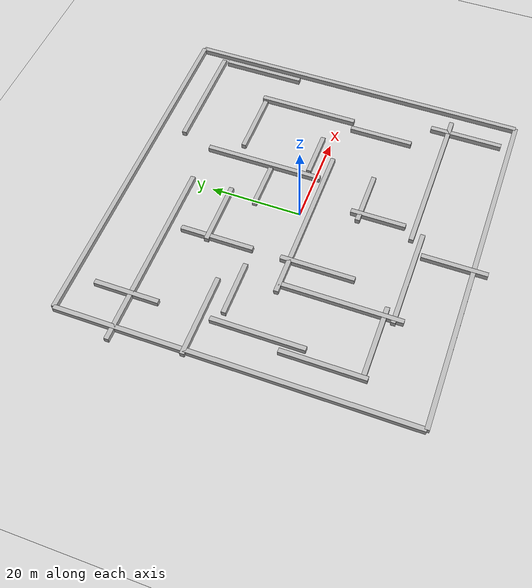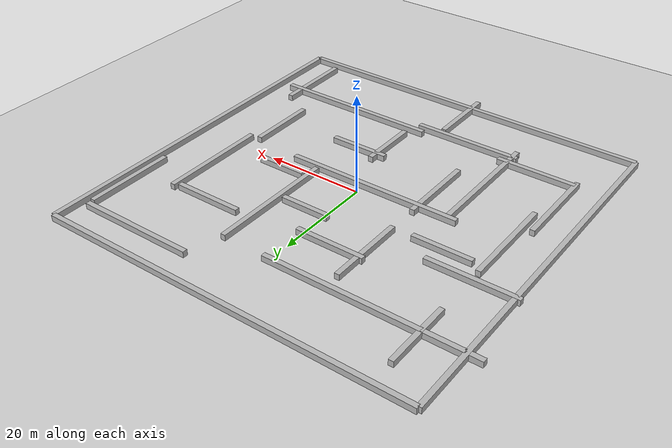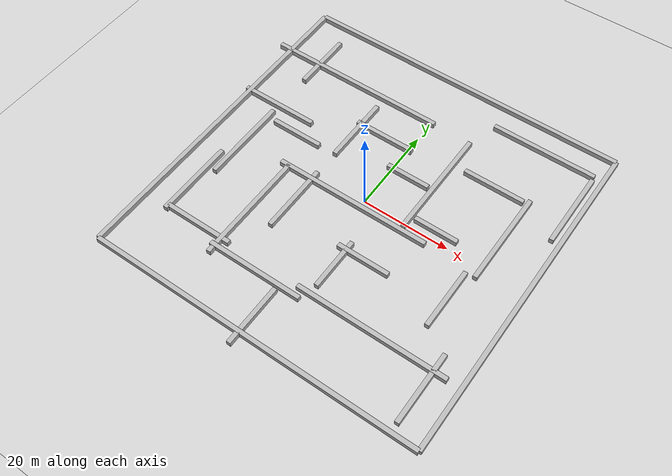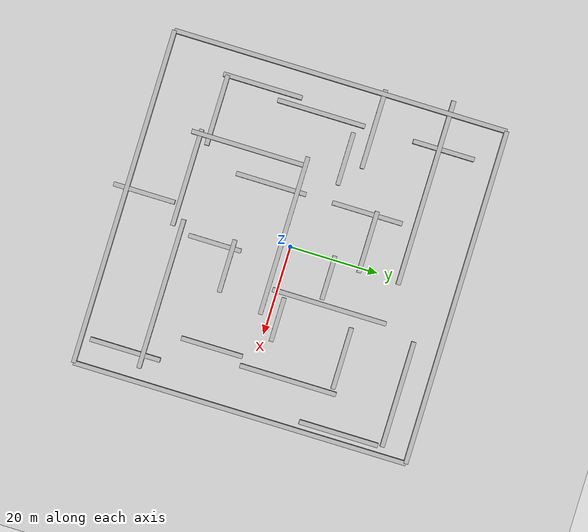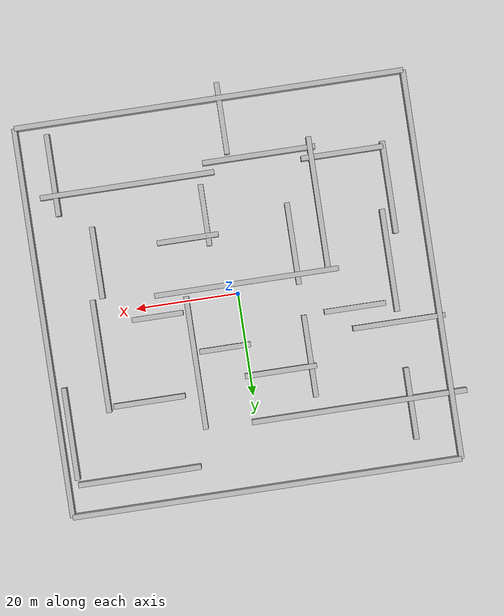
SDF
<?xml version="1.0" encoding="UTF-8"?>
<sdf version="1.9">
  <world name="walls">
    <physics type="ode">
      <max_step_size>0.004</max_step_size>
      <real_time_factor>1.0</real_time_factor>
      <real_time_update_rate>250</real_time_update_rate>
    </physics>

    <plugin
      filename="gz-sim-physics-system"
      name="gz::sim::systems::Physics">
    </plugin>
    <plugin
      filename="gz-sim-user-commands-system"
      name="gz::sim::systems::UserCommands">
    </plugin>
    <plugin
      filename="gz-sim-scene-broadcaster-system"
      name="gz::sim::systems::SceneBroadcaster">
    </plugin>
    <plugin
      filename="gz-sim-sensors-system"
      name="gz::sim::systems::Sensors">
      <render_engine>ogre2</render_engine>
    </plugin>
    <gravity>0 0 -9.8</gravity>
    <magnetic_field>6e-06 2.3e-05 -4.2e-05</magnetic_field>
    <atmosphere type="adiabatic"/>

    <scene>
      <grid>false</grid>
      <ambient>0.4 0.4 0.4 1</ambient>
      <background>0.7 0.7 0.7 1</background>
      <shadows>true</shadows>
    </scene>

    <model name="ground_plane">
      <static>true</static>
      <link name="link">
        <collision name="collision">
          <geometry>
            <plane>
              <normal>0 0 1</normal>
              <size>80 80</size>
            </plane>
          </geometry>
        </collision>
        <visual name="visual">
          <geometry>
            <plane>
              <normal>0 0 1</normal>
              <size>80 80</size>
            </plane>
          </geometry>
          <material>
            <ambient>0.82 0.82 0.82 1</ambient>
            <diffuse>0.82 0.82 0.82 1</diffuse>
            <specular>0.2 0.2 0.2 1</specular>
          </material>
        </visual>
      </link>
    </model>

    <light name="sunUTC" type="directional">
      <pose>0 0 500 0 0 0</pose>
      <cast_shadows>true</cast_shadows>
      <intensity>1</intensity>
      <direction>0.001 0.625 -0.78</direction>
      <diffuse>0.904 0.904 0.904 1</diffuse>
      <specular>0.271 0.271 0.271 1</specular>
      <attenuation>
        <range>2000</range>
        <linear>0</linear>
        <constant>1</constant>
        <quadratic>0</quadratic>
      </attenuation>
    </light>

    <!-- Outer boundary, low enough to keep scene visibility -->
    <model name="wall_north">
      <static>true</static>
      <pose>0 38 0.6 0 0 0</pose>
      <link name="link">
        <collision name="collision"><geometry><box><size>76 1 1.2</size></box></geometry></collision>
        <visual name="visual"><geometry><box><size>76 1 1.2</size></box></geometry></visual>
      </link>
    </model>
    <model name="wall_south">
      <static>true</static>
      <pose>0 -38 0.6 0 0 0</pose>
      <link name="link">
        <collision name="collision"><geometry><box><size>76 1 1.2</size></box></geometry></collision>
        <visual name="visual"><geometry><box><size>76 1 1.2</size></box></geometry></visual>
      </link>
    </model>
    <model name="wall_east">
      <static>true</static>
      <pose>38 0 0.6 0 0 0</pose>
      <link name="link">
        <collision name="collision"><geometry><box><size>1 76 1.2</size></box></geometry></collision>
        <visual name="visual"><geometry><box><size>1 76 1.2</size></box></geometry></visual>
      </link>
    </model>
    <model name="wall_west">
      <static>true</static>
      <pose>-38 0 0.6 0 0 0</pose>
      <link name="link">
        <collision name="collision"><geometry><box><size>1 76 1.2</size></box></geometry></collision>
        <visual name="visual"><geometry><box><size>1 76 1.2</size></box></geometry></visual>
      </link>
    </model>

    <!-- Maze corridors -->
    <model name="maze_1">
      <static>true</static>
      <pose>-20 25 0.6 0 0 0</pose>
      <link name="link">
        <collision name="collision"><geometry><box><size>42 1 1.2</size></box></geometry></collision>
        <visual name="visual"><geometry><box><size>42 1 1.2</size></box></geometry></visual>
      </link>
    </model>
    <model name="maze_2">
      <static>true</static>
      <pose>10 12 0.6 0 0 0</pose>
      <link name="link">
        <collision name="collision"><geometry><box><size>1 26 1.2</size></box></geometry></collision>
        <visual name="visual"><geometry><box><size>1 26 1.2</size></box></geometry></visual>
      </link>
    </model>
    <model name="maze_3">
      <static>true</static>
      <pose>-2 -2 0.6 0 0 0</pose>
      <link name="link">
        <collision name="collision"><geometry><box><size>36 1 1.2</size></box></geometry></collision>
        <visual name="visual"><geometry><box><size>36 1 1.2</size></box></geometry></visual>
      </link>
    </model>
    <model name="maze_4">
      <static>true</static>
      <pose>-18 -15 0.6 0 0 0</pose>
      <link name="link">
        <collision name="collision"><geometry><box><size>1 26 1.2</size></box></geometry></collision>
        <visual name="visual"><geometry><box><size>1 26 1.2</size></box></geometry></visual>
      </link>
    </model>
    <model name="maze_5">
      <static>true</static>
      <pose>18 -24 0.6 0 0 0</pose>
      <link name="link">
        <collision name="collision"><geometry><box><size>34 1 1.2</size></box></geometry></collision>
        <visual name="visual"><geometry><box><size>34 1 1.2</size></box></geometry></visual>
      </link>
    </model>
    <model name="maze_6">
      <static>true</static>
      <pose>28 8 0.6 0 0 0</pose>
      <link name="link">
        <collision name="collision"><geometry><box><size>1 22 1.2</size></box></geometry></collision>
        <visual name="visual"><geometry><box><size>1 22 1.2</size></box></geometry></visual>
      </link>
    </model>

    <!-- Extra segments to create more turns for drive_lidar while leaving the spawn area open -->
    <model name="maze_7">
      <static>true</static>
      <pose>-30 10 0.6 0 0 0</pose>
      <link name="link">
        <collision name="collision"><geometry><box><size>18 1 1.2</size></box></geometry></collision>
        <visual name="visual"><geometry><box><size>18 1 1.2</size></box></geometry></visual>
      </link>
    </model>
    <model name="maze_8">
      <static>true</static>
      <pose>-30 -2 0.6 0 0 0</pose>
      <link name="link">
        <collision name="collision"><geometry><box><size>1 20 1.2</size></box></geometry></collision>
        <visual name="visual"><geometry><box><size>1 20 1.2</size></box></geometry></visual>
      </link>
    </model>
    <model name="maze_9">
      <static>true</static>
      <pose>-6 16 0.6 0 0 0</pose>
      <link name="link">
        <collision name="collision"><geometry><box><size>14 1 1.2</size></box></geometry></collision>
        <visual name="visual"><geometry><box><size>14 1 1.2</size></box></geometry></visual>
      </link>
    </model>
    <model name="maze_10">
      <static>true</static>
      <pose>20 18 0.6 0 0 0</pose>
      <link name="link">
        <collision name="collision"><geometry><box><size>14 1 1.2</size></box></geometry></collision>
        <visual name="visual"><geometry><box><size>14 1 1.2</size></box></geometry></visual>
      </link>
    </model>
    <model name="maze_11">
      <static>true</static>
      <pose>36 22 0.6 0 0 0</pose>
      <link name="link">
        <collision name="collision"><geometry><box><size>1 18 1.2</size></box></geometry></collision>
        <visual name="visual"><geometry><box><size>1 18 1.2</size></box></geometry></visual>
      </link>
    </model>
    <model name="maze_12">
      <static>true</static>
      <pose>8 -12 0.6 0 0 0</pose>
      <link name="link">
        <collision name="collision"><geometry><box><size>12 1 1.2</size></box></geometry></collision>
        <visual name="visual"><geometry><box><size>12 1 1.2</size></box></geometry></visual>
      </link>
    </model>
    <model name="maze_13">
      <static>true</static>
      <pose>26 -10 0.6 0 0 0</pose>
      <link name="link">
        <collision name="collision"><geometry><box><size>1 14 1.2</size></box></geometry></collision>
        <visual name="visual"><geometry><box><size>1 14 1.2</size></box></geometry></visual>
      </link>
    </model>
    <model name="maze_14">
      <static>true</static>
      <pose>-8 -26 0.6 0 0 0</pose>
      <link name="link">
        <collision name="collision"><geometry><box><size>22 1 1.2</size></box></geometry></collision>
        <visual name="visual"><geometry><box><size>22 1 1.2</size></box></geometry></visual>
      </link>
    </model>
    <model name="maze_15">
      <static>true</static>
      <pose>-2 -34 0.6 0 0 0</pose>
      <link name="link">
        <collision name="collision"><geometry><box><size>1 14 1.2</size></box></geometry></collision>
        <visual name="visual"><geometry><box><size>1 14 1.2</size></box></geometry></visual>
      </link>
    </model>
    <model name="maze_16">
      <static>true</static>
      <pose>24 32 0.6 0 0 0</pose>
      <link name="link">
        <collision name="collision"><geometry><box><size>24 1 1.2</size></box></geometry></collision>
        <visual name="visual"><geometry><box><size>24 1 1.2</size></box></geometry></visual>
      </link>
    </model>
    <model name="maze_17">
      <static>true</static>
      <pose>-22 6 0.6 0 0 0</pose>
      <link name="link">
        <collision name="collision"><geometry><box><size>12 1 1.2</size></box></geometry></collision>
        <visual name="visual"><geometry><box><size>12 1 1.2</size></box></geometry></visual>
      </link>
    </model>
    <model name="maze_18">
      <static>true</static>
      <pose>-12 14 0.6 0 0 0</pose>
      <link name="link">
        <collision name="collision"><geometry><box><size>1 16 1.2</size></box></geometry></collision>
        <visual name="visual"><geometry><box><size>1 16 1.2</size></box></geometry></visual>
      </link>
    </model>
    <model name="maze_19">
      <static>true</static>
      <pose>-12 -8 0.6 0 0 0</pose>
      <link name="link">
        <collision name="collision"><geometry><box><size>1 16 1.2</size></box></geometry></collision>
        <visual name="visual"><geometry><box><size>1 16 1.2</size></box></geometry></visual>
      </link>
    </model>
    <model name="maze_20">
      <static>true</static>
      <pose>-24 -24 0.6 0 0 0</pose>
      <link name="link">
        <collision name="collision"><geometry><box><size>16 1 1.2</size></box></geometry></collision>
        <visual name="visual"><geometry><box><size>16 1 1.2</size></box></geometry></visual>
      </link>
    </model>
    <model name="maze_21">
      <static>true</static>
      <pose>-32 -16 0.6 0 0 0</pose>
      <link name="link">
        <collision name="collision"><geometry><box><size>1 18 1.2</size></box></geometry></collision>
        <visual name="visual"><geometry><box><size>1 18 1.2</size></box></geometry></visual>
      </link>
    </model>
    <model name="maze_22">
      <static>true</static>
      <pose>-30 26 0.6 0 0 0</pose>
      <link name="link">
        <collision name="collision"><geometry><box><size>1 14 1.2</size></box></geometry></collision>
        <visual name="visual"><geometry><box><size>1 14 1.2</size></box></geometry></visual>
      </link>
    </model>
    <model name="maze_23">
      <static>true</static>
      <pose>4 10 0.6 0 0 0</pose>
      <link name="link">
        <collision name="collision"><geometry><box><size>10 1 1.2</size></box></geometry></collision>
        <visual name="visual"><geometry><box><size>10 1 1.2</size></box></geometry></visual>
      </link>
    </model>
    <model name="maze_24">
      <static>true</static>
      <pose>16 2 0.6 0 0 0</pose>
      <link name="link">
        <collision name="collision"><geometry><box><size>10 1 1.2</size></box></geometry></collision>
        <visual name="visual"><geometry><box><size>10 1 1.2</size></box></geometry></visual>
      </link>
    </model>
    <model name="maze_25">
      <static>true</static>
      <pose>4 -16 0.6 0 0 0</pose>
      <link name="link">
        <collision name="collision"><geometry><box><size>1 12 1.2</size></box></geometry></collision>
        <visual name="visual"><geometry><box><size>1 12 1.2</size></box></geometry></visual>
      </link>
    </model>
    <model name="maze_26">
      <static>true</static>
      <pose>32 -28 0.6 0 0 0</pose>
      <link name="link">
        <collision name="collision"><geometry><box><size>1 16 1.2</size></box></geometry></collision>
        <visual name="visual"><geometry><box><size>1 16 1.2</size></box></geometry></visual>
      </link>
    </model>

    <spherical_coordinates>
      <surface_model>EARTH_WGS84</surface_model>
      <world_frame_orientation>ENU</world_frame_orientation>
      <latitude_deg>47.397971057728974</latitude_deg>
      <longitude_deg>8.546163739800146</longitude_deg>
      <elevation>0</elevation>
    </spherical_coordinates>
    <gui fullscreen="0">
      <plugin filename="MinimalScene" name="3D View">
        <gz-gui>
          <title>3D View</title>
          <property type="bool" key="showTitleBar">false</property>
          <property type="string" key="state">docked</property>
        </gz-gui>
        <engine>ogre2</engine>
        <scene>scene</scene>
        <ambient_light>0.4 0.4 0.4</ambient_light>
        <background_color>0.8 0.8 0.8</background_color>
        <camera_pose>-18 0 12 0 0.5 0.0</camera_pose>
      </plugin>
      <plugin filename="EntityContextMenuPlugin" name="Entity context menu">
        <gz-gui>
          <property key="state" type="string">floating</property>
          <property key="width" type="double">5</property>
          <property key="height" type="double">5</property>
          <property key="showTitleBar" type="bool">false</property>
        </gz-gui>
      </plugin>
      <plugin filename="GzSceneManager" name="Scene Manager">
        <gz-gui>
          <property key="resizable" type="bool">false</property>
          <property key="width" type="double">5</property>
          <property key="height" type="double">5</property>
          <property key="state" type="string">floating</property>
          <property key="showTitleBar" type="bool">false</property>
        </gz-gui>
      </plugin>
      <plugin filename="InteractiveViewControl" name="Interactive view control">
        <gz-gui>
          <property key="resizable" type="bool">false</property>
          <property key="width" type="double">5</property>
          <property key="height" type="double">5</property>
          <property key="state" type="string">floating</property>
          <property key="showTitleBar" type="bool">false</property>
        </gz-gui>
      </plugin>
      <plugin filename="CameraTracking" name="Camera Tracking">
        <gz-gui>
          <property key="resizable" type="bool">false</property>
          <property key="width" type="double">5</property>
          <property key="height" type="double">5</property>
          <property key="state" type="string">floating</property>
          <property key="showTitleBar" type="bool">false</property>
        </gz-gui>
      </plugin>
      <plugin filename="WorldControl" name="World control">
        <gz-gui>
          <title>World control</title>
          <property type="bool" key="showTitleBar">false</property>
          <property type="bool" key="resizable">false</property>
          <property type="double" key="height">72</property>
          <property type="double" key="z">1</property>
          <property type="string" key="state">floating</property>
          <anchors target="3D View">
            <line own="left" target="left"/>
            <line own="bottom" target="bottom"/>
          </anchors>
        </gz-gui>
        <play_pause>true</play_pause>
        <step>true</step>
        <start_paused>true</start_paused>
        <use_event>true</use_event>
      </plugin>
      <plugin filename="WorldStats" name="World stats">
        <gz-gui>
          <title>World stats</title>
          <property type="bool" key="showTitleBar">false</property>
          <property type="bool" key="resizable">false</property>
          <property type="double" key="height">110</property>
          <property type="double" key="width">290</property>
          <property type="double" key="z">1</property>
          <property type="string" key="state">floating</property>
          <anchors target="3D View">
            <line own="right" target="right"/>
            <line own="bottom" target="bottom"/>
          </anchors>
        </gz-gui>
        <sim_time>true</sim_time>
        <real_time>true</real_time>
        <real_time_factor>true</real_time_factor>
        <iterations>true</iterations>
      </plugin>
      <plugin filename="ImageDisplay" name="Bebop Camera">
        <gz-gui>
          <title>Bebop Camera</title>
          <property key="state" type="string">docked</property>
        </gz-gui>
        <topic>/world/walls/model/bebop1/model/parrot_bebop_2/link/body/sensor/rgb_camera_sensor/image</topic>
      </plugin>
      <plugin filename="ComponentInspector" name="Component inspector">
        <gz-gui>
          <property type="string" key="state">docked</property>
        </gz-gui>
      </plugin>
      <plugin filename="EntityTree" name="Entity tree">
        <gz-gui>
          <property type="string" key="state">docked</property>
        </gz-gui>
      </plugin>
    </gui>
  </world>
</sdf>
